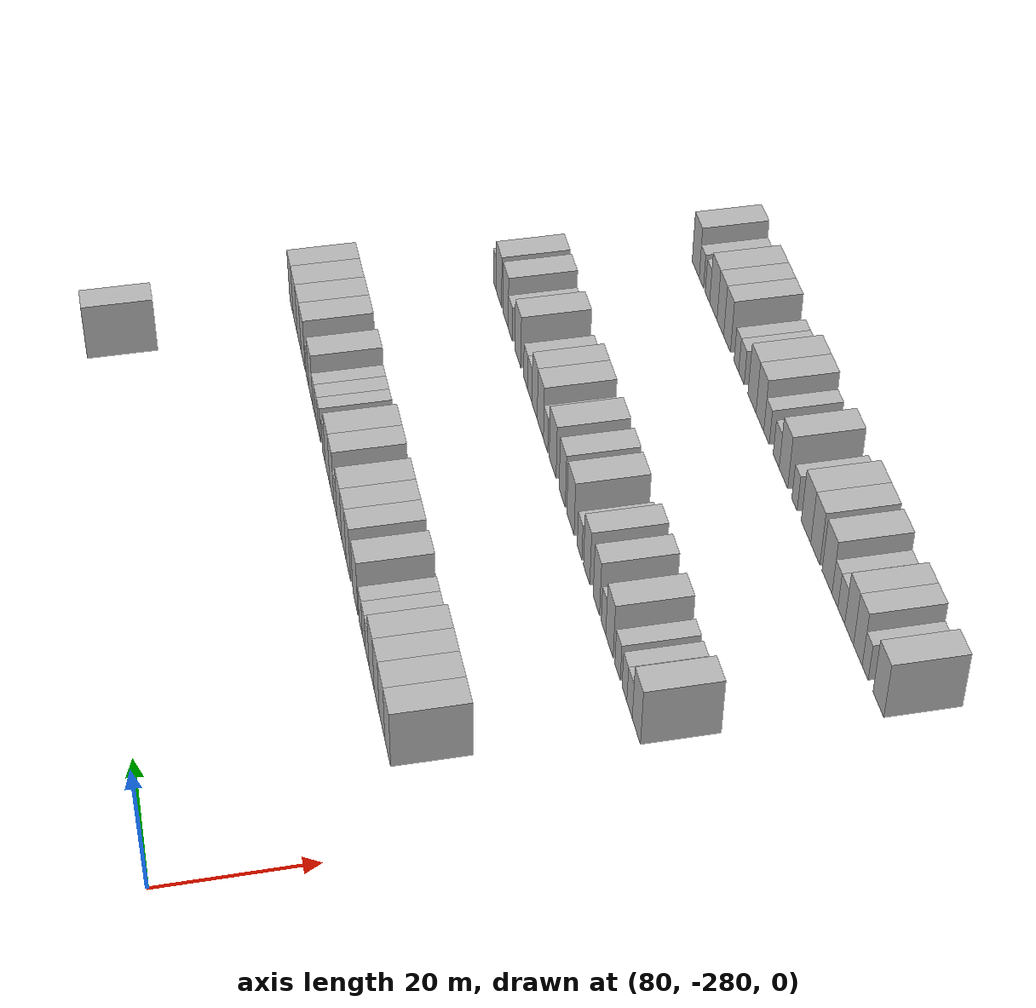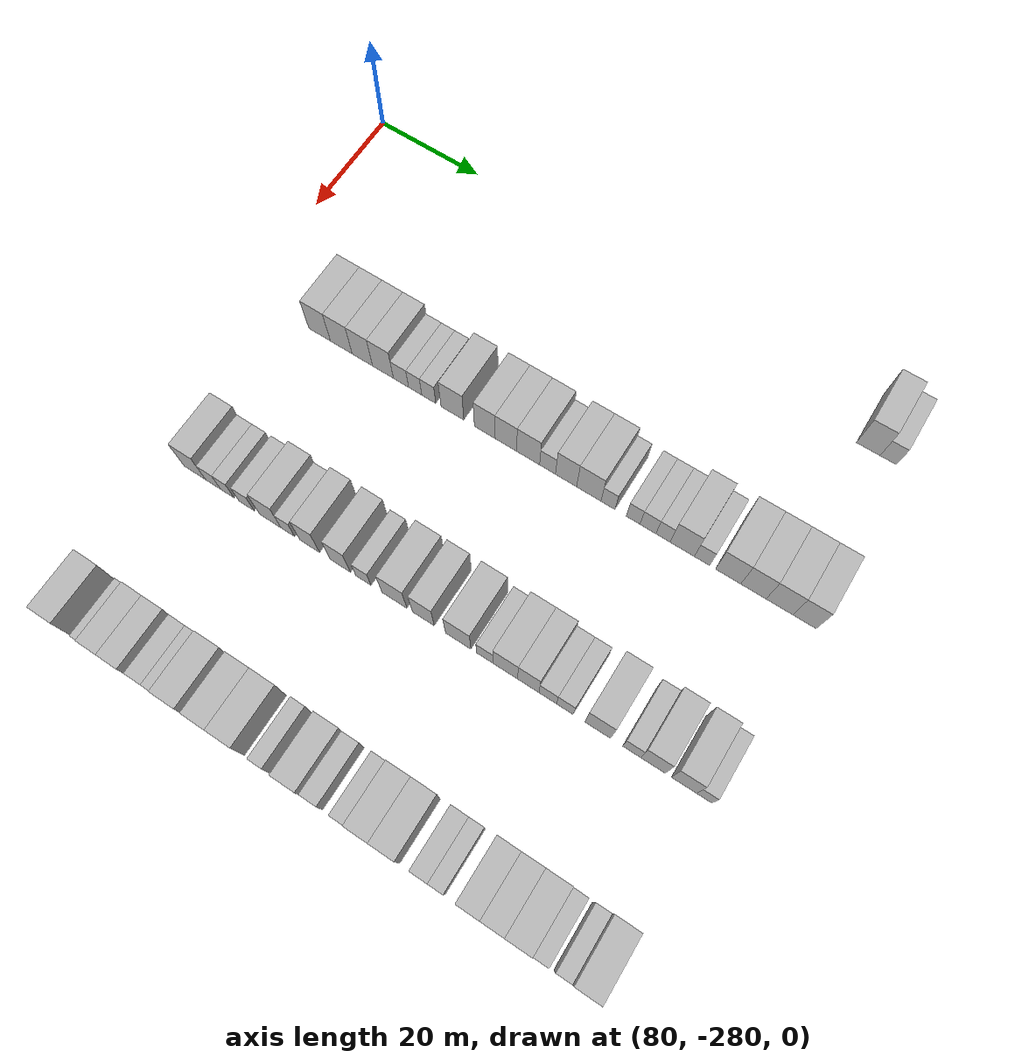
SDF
<sdf version="1.6">
 <world name="default">
  <model name="building_532">
   <static>1</static>
   <pose>85.0000 -180.4842 0 0.000000 0.000000 0.000000</pose>
   <link name="link">
    <pose>0 0 4.50 0 0 0</pose>
    <collision name="collision"><geometry><box><size>10.0000 4.0856 9.0000</size></box></geometry></collision>
    <visual name="visual">
     <cast_shadows>0</cast_shadows>
     <geometry><box><size>10.0000 4.0856 9.0000</size></box></geometry>
     <material>
      <script>
       <uri>model://HANNAS_wall/materials/scripts</uri>
       <uri>model://HANNAS_wall/materials/textures</uri>
       <name>vrc/HANNAS_wall</name>
      </script>
     </material>
    </visual>
   </link>
  </model>
  <model name="building_533">
   <static>1</static>
   <pose>85.0000 -177.0371 0 0.000000 0.000000 0.000000</pose>
   <link name="link">
    <pose>0 0 3.00 0 0 0</pose>
    <collision name="collision"><geometry><box><size>10.0000 2.8087 6.0000</size></box></geometry></collision>
    <visual name="visual">
     <cast_shadows>0</cast_shadows>
     <geometry><box><size>10.0000 2.8087 6.0000</size></box></geometry>
     <material>
      <script>
       <uri>model://HANNAS_wall/materials/scripts</uri>
       <uri>model://HANNAS_wall/materials/textures</uri>
       <name>vrc/HANNAS_wall</name>
      </script>
     </material>
    </visual>
   </link>
  </model>
  <model name="building_739">
   <static>1</static>
   <pose>115.0000 -264.7862 0 0.000000 0.000000 0.000000</pose>
   <link name="link">
    <pose>0 0 4.50 0 0 0</pose>
    <collision name="collision"><geometry><box><size>10.0000 4.3604 9.0000</size></box></geometry></collision>
    <visual name="visual">
     <cast_shadows>0</cast_shadows>
     <geometry><box><size>10.0000 4.3604 9.0000</size></box></geometry>
     <material>
      <script>
       <uri>model://HANNAS_wall/materials/scripts</uri>
       <uri>model://HANNAS_wall/materials/textures</uri>
       <name>vrc/HANNAS_wall</name>
      </script>
     </material>
    </visual>
   </link>
  </model>
  <model name="building_740">
   <static>1</static>
   <pose>115.0000 -260.4395 0 0.000000 0.000000 0.000000</pose>
   <link name="link">
    <pose>0 0 4.50 0 0 0</pose>
    <collision name="collision"><geometry><box><size>10.0000 4.3329 9.0000</size></box></geometry></collision>
    <visual name="visual">
     <cast_shadows>0</cast_shadows>
     <geometry><box><size>10.0000 4.3329 9.0000</size></box></geometry>
     <material>
      <script>
       <uri>model://HANNAS_wall/materials/scripts</uri>
       <uri>model://HANNAS_wall/materials/textures</uri>
       <name>vrc/HANNAS_wall</name>
      </script>
     </material>
    </visual>
   </link>
  </model>
  <model name="building_741">
   <static>1</static>
   <pose>115.0000 -256.2731 0 0.000000 0.000000 0.000000</pose>
   <link name="link">
    <pose>0 0 4.50 0 0 0</pose>
    <collision name="collision"><geometry><box><size>10.0000 3.9998 9.0000</size></box></geometry></collision>
    <visual name="visual">
     <cast_shadows>0</cast_shadows>
     <geometry><box><size>10.0000 3.9998 9.0000</size></box></geometry>
     <material>
      <script>
       <uri>model://HANNAS_wall/materials/scripts</uri>
       <uri>model://HANNAS_wall/materials/textures</uri>
       <name>vrc/HANNAS_wall</name>
      </script>
     </material>
    </visual>
   </link>
  </model>
  <model name="building_742">
   <static>1</static>
   <pose>115.0000 -252.2165 0 0.000000 0.000000 0.000000</pose>
   <link name="link">
    <pose>0 0 4.50 0 0 0</pose>
    <collision name="collision"><geometry><box><size>10.0000 4.1134 9.0000</size></box></geometry></collision>
    <visual name="visual">
     <cast_shadows>0</cast_shadows>
     <geometry><box><size>10.0000 4.1134 9.0000</size></box></geometry>
     <material>
      <script>
       <uri>model://HANNAS_wall/materials/scripts</uri>
       <uri>model://HANNAS_wall/materials/textures</uri>
       <name>vrc/HANNAS_wall</name>
      </script>
     </material>
    </visual>
   </link>
  </model>
  <model name="building_743">
   <static>1</static>
   <pose>115.0000 -248.6884 0 0.000000 0.000000 0.000000</pose>
   <link name="link">
    <pose>0 0 3.00 0 0 0</pose>
    <collision name="collision"><geometry><box><size>10.0000 2.9428 6.0000</size></box></geometry></collision>
    <visual name="visual">
     <cast_shadows>0</cast_shadows>
     <geometry><box><size>10.0000 2.9428 6.0000</size></box></geometry>
     <material>
      <script>
       <uri>model://HANNAS_wall/materials/scripts</uri>
       <uri>model://HANNAS_wall/materials/textures</uri>
       <name>vrc/HANNAS_wall</name>
      </script>
     </material>
    </visual>
   </link>
  </model>
  <model name="building_744">
   <static>1</static>
   <pose>115.0000 -245.9374 0 0.000000 0.000000 0.000000</pose>
   <link name="link">
    <pose>0 0 3.00 0 0 0</pose>
    <collision name="collision"><geometry><box><size>10.0000 2.5593 6.0000</size></box></geometry></collision>
    <visual name="visual">
     <cast_shadows>0</cast_shadows>
     <geometry><box><size>10.0000 2.5593 6.0000</size></box></geometry>
     <material>
      <script>
       <uri>model://HANNAS_wall/materials/scripts</uri>
       <uri>model://HANNAS_wall/materials/textures</uri>
       <name>vrc/HANNAS_wall</name>
      </script>
     </material>
    </visual>
   </link>
  </model>
  <model name="building_745">
   <static>1</static>
   <pose>115.0000 -243.3194 0 0.000000 0.000000 0.000000</pose>
   <link name="link">
    <pose>0 0 3.00 0 0 0</pose>
    <collision name="collision"><geometry><box><size>10.0000 2.6768 6.0000</size></box></geometry></collision>
    <visual name="visual">
     <cast_shadows>0</cast_shadows>
     <geometry><box><size>10.0000 2.6768 6.0000</size></box></geometry>
     <material>
      <script>
       <uri>model://HANNAS_wall/materials/scripts</uri>
       <uri>model://HANNAS_wall/materials/textures</uri>
       <name>vrc/HANNAS_wall</name>
      </script>
     </material>
    </visual>
   </link>
  </model>
  <model name="building_746">
   <static>1</static>
   <pose>115.0000 -238.8083 0 0.000000 0.000000 0.000000</pose>
   <link name="link">
    <pose>0 0 4.50 0 0 0</pose>
    <collision name="collision"><geometry><box><size>10.0000 4.3453 9.0000</size></box></geometry></collision>
    <visual name="visual">
     <cast_shadows>0</cast_shadows>
     <geometry><box><size>10.0000 4.3453 9.0000</size></box></geometry>
     <material>
      <script>
       <uri>model://HANNAS_wall/materials/scripts</uri>
       <uri>model://HANNAS_wall/materials/textures</uri>
       <name>vrc/HANNAS_wall</name>
      </script>
     </material>
    </visual>
   </link>
  </model>
  <model name="building_747">
   <static>1</static>
   <pose>115.0000 -232.6866 0 0.000000 0.000000 0.000000</pose>
   <link name="link">
    <pose>0 0 4.50 0 0 0</pose>
    <collision name="collision"><geometry><box><size>10.0000 3.8981 9.0000</size></box></geometry></collision>
    <visual name="visual">
     <cast_shadows>0</cast_shadows>
     <geometry><box><size>10.0000 3.8981 9.0000</size></box></geometry>
     <material>
      <script>
       <uri>model://HANNAS_wall/materials/scripts</uri>
       <uri>model://HANNAS_wall/materials/textures</uri>
       <name>vrc/HANNAS_wall</name>
      </script>
     </material>
    </visual>
   </link>
  </model>
  <model name="building_748">
   <static>1</static>
   <pose>115.0000 -228.7459 0 0.000000 0.000000 0.000000</pose>
   <link name="link">
    <pose>0 0 4.50 0 0 0</pose>
    <collision name="collision"><geometry><box><size>10.0000 3.9834 9.0000</size></box></geometry></collision>
    <visual name="visual">
     <cast_shadows>0</cast_shadows>
     <geometry><box><size>10.0000 3.9834 9.0000</size></box></geometry>
     <material>
      <script>
       <uri>model://HANNAS_wall/materials/scripts</uri>
       <uri>model://HANNAS_wall/materials/textures</uri>
       <name>vrc/HANNAS_wall</name>
      </script>
     </material>
    </visual>
   </link>
  </model>
  <model name="building_749">
   <static>1</static>
   <pose>115.0000 -224.6302 0 0.000000 0.000000 0.000000</pose>
   <link name="link">
    <pose>0 0 4.50 0 0 0</pose>
    <collision name="collision"><geometry><box><size>10.0000 4.2481 9.0000</size></box></geometry></collision>
    <visual name="visual">
     <cast_shadows>0</cast_shadows>
     <geometry><box><size>10.0000 4.2481 9.0000</size></box></geometry>
     <material>
      <script>
       <uri>model://HANNAS_wall/materials/scripts</uri>
       <uri>model://HANNAS_wall/materials/textures</uri>
       <name>vrc/HANNAS_wall</name>
      </script>
     </material>
    </visual>
   </link>
  </model>
  <model name="building_750">
   <static>1</static>
   <pose>115.0000 -221.0613 0 0.000000 0.000000 0.000000</pose>
   <link name="link">
    <pose>0 0 3.00 0 0 0</pose>
    <collision name="collision"><geometry><box><size>10.0000 2.8897 6.0000</size></box></geometry></collision>
    <visual name="visual">
     <cast_shadows>0</cast_shadows>
     <geometry><box><size>10.0000 2.8897 6.0000</size></box></geometry>
     <material>
      <script>
       <uri>model://HANNAS_wall/materials/scripts</uri>
       <uri>model://HANNAS_wall/materials/textures</uri>
       <name>vrc/HANNAS_wall</name>
      </script>
     </material>
    </visual>
   </link>
  </model>
  <model name="building_751">
   <static>1</static>
   <pose>115.0000 -217.6936 0 0.000000 0.000000 0.000000</pose>
   <link name="link">
    <pose>0 0 4.50 0 0 0</pose>
    <collision name="collision"><geometry><box><size>10.0000 3.8456 9.0000</size></box></geometry></collision>
    <visual name="visual">
     <cast_shadows>0</cast_shadows>
     <geometry><box><size>10.0000 3.8456 9.0000</size></box></geometry>
     <material>
      <script>
       <uri>model://HANNAS_wall/materials/scripts</uri>
       <uri>model://HANNAS_wall/materials/textures</uri>
       <name>vrc/HANNAS_wall</name>
      </script>
     </material>
    </visual>
   </link>
  </model>
  <model name="building_752">
   <static>1</static>
   <pose>115.0000 -213.5782 0 0.000000 0.000000 0.000000</pose>
   <link name="link">
    <pose>0 0 4.50 0 0 0</pose>
    <collision name="collision"><geometry><box><size>10.0000 4.3852 9.0000</size></box></geometry></collision>
    <visual name="visual">
     <cast_shadows>0</cast_shadows>
     <geometry><box><size>10.0000 4.3852 9.0000</size></box></geometry>
     <material>
      <script>
       <uri>model://HANNAS_wall/materials/scripts</uri>
       <uri>model://HANNAS_wall/materials/textures</uri>
       <name>vrc/HANNAS_wall</name>
      </script>
     </material>
    </visual>
   </link>
  </model>
  <model name="building_753">
   <static>1</static>
   <pose>115.0000 -210.1295 0 0.000000 0.000000 0.000000</pose>
   <link name="link">
    <pose>0 0 3.00 0 0 0</pose>
    <collision name="collision"><geometry><box><size>10.0000 2.5121 6.0000</size></box></geometry></collision>
    <visual name="visual">
     <cast_shadows>0</cast_shadows>
     <geometry><box><size>10.0000 2.5121 6.0000</size></box></geometry>
     <material>
      <script>
       <uri>model://HANNAS_wall/materials/scripts</uri>
       <uri>model://HANNAS_wall/materials/textures</uri>
       <name>vrc/HANNAS_wall</name>
      </script>
     </material>
    </visual>
   </link>
  </model>
  <model name="building_754">
   <static>1</static>
   <pose>115.0000 -205.6609 0 0.000000 0.000000 0.000000</pose>
   <link name="link">
    <pose>0 0 3.00 0 0 0</pose>
    <collision name="collision"><geometry><box><size>10.0000 2.4251 6.0000</size></box></geometry></collision>
    <visual name="visual">
     <cast_shadows>0</cast_shadows>
     <geometry><box><size>10.0000 2.4251 6.0000</size></box></geometry>
     <material>
      <script>
       <uri>model://HANNAS_wall/materials/scripts</uri>
       <uri>model://HANNAS_wall/materials/textures</uri>
       <name>vrc/HANNAS_wall</name>
      </script>
     </material>
    </visual>
   </link>
  </model>
  <model name="building_755">
   <static>1</static>
   <pose>115.0000 -203.0400 0 0.000000 0.000000 0.000000</pose>
   <link name="link">
    <pose>0 0 3.00 0 0 0</pose>
    <collision name="collision"><geometry><box><size>10.0000 2.8167 6.0000</size></box></geometry></collision>
    <visual name="visual">
     <cast_shadows>0</cast_shadows>
     <geometry><box><size>10.0000 2.8167 6.0000</size></box></geometry>
     <material>
      <script>
       <uri>model://HANNAS_wall/materials/scripts</uri>
       <uri>model://HANNAS_wall/materials/textures</uri>
       <name>vrc/HANNAS_wall</name>
      </script>
     </material>
    </visual>
   </link>
  </model>
  <model name="building_756">
   <static>1</static>
   <pose>115.0000 -200.3820 0 0.000000 0.000000 0.000000</pose>
   <link name="link">
    <pose>0 0 3.00 0 0 0</pose>
    <collision name="collision"><geometry><box><size>10.0000 2.4995 6.0000</size></box></geometry></collision>
    <visual name="visual">
     <cast_shadows>0</cast_shadows>
     <geometry><box><size>10.0000 2.4995 6.0000</size></box></geometry>
     <material>
      <script>
       <uri>model://HANNAS_wall/materials/scripts</uri>
       <uri>model://HANNAS_wall/materials/textures</uri>
       <name>vrc/HANNAS_wall</name>
      </script>
     </material>
    </visual>
   </link>
  </model>
  <model name="building_757">
   <static>1</static>
   <pose>115.0000 -197.0403 0 0.000000 0.000000 0.000000</pose>
   <link name="link">
    <pose>0 0 4.50 0 0 0</pose>
    <collision name="collision"><geometry><box><size>10.0000 4.1839 9.0000</size></box></geometry></collision>
    <visual name="visual">
     <cast_shadows>0</cast_shadows>
     <geometry><box><size>10.0000 4.1839 9.0000</size></box></geometry>
     <material>
      <script>
       <uri>model://HANNAS_wall/materials/scripts</uri>
       <uri>model://HANNAS_wall/materials/textures</uri>
       <name>vrc/HANNAS_wall</name>
      </script>
     </material>
    </visual>
   </link>
  </model>
  <model name="building_758">
   <static>1</static>
   <pose>115.0000 -193.6338 0 0.000000 0.000000 0.000000</pose>
   <link name="link">
    <pose>0 0 3.00 0 0 0</pose>
    <collision name="collision"><geometry><box><size>10.0000 2.6292 6.0000</size></box></geometry></collision>
    <visual name="visual">
     <cast_shadows>0</cast_shadows>
     <geometry><box><size>10.0000 2.6292 6.0000</size></box></geometry>
     <material>
      <script>
       <uri>model://HANNAS_wall/materials/scripts</uri>
       <uri>model://HANNAS_wall/materials/textures</uri>
       <name>vrc/HANNAS_wall</name>
      </script>
     </material>
    </visual>
   </link>
  </model>
  <model name="building_759">
   <static>1</static>
   <pose>115.0000 -189.1664 0 0.000000 0.000000 0.000000</pose>
   <link name="link">
    <pose>0 0 4.50 0 0 0</pose>
    <collision name="collision"><geometry><box><size>10.0000 4.3056 9.0000</size></box></geometry></collision>
    <visual name="visual">
     <cast_shadows>0</cast_shadows>
     <geometry><box><size>10.0000 4.3056 9.0000</size></box></geometry>
     <material>
      <script>
       <uri>model://HANNAS_wall/materials/scripts</uri>
       <uri>model://HANNAS_wall/materials/textures</uri>
       <name>vrc/HANNAS_wall</name>
      </script>
     </material>
    </visual>
   </link>
  </model>
  <model name="building_760">
   <static>1</static>
   <pose>115.0000 -184.8801 0 0.000000 0.000000 0.000000</pose>
   <link name="link">
    <pose>0 0 4.50 0 0 0</pose>
    <collision name="collision"><geometry><box><size>10.0000 4.2669 9.0000</size></box></geometry></collision>
    <visual name="visual">
     <cast_shadows>0</cast_shadows>
     <geometry><box><size>10.0000 4.2669 9.0000</size></box></geometry>
     <material>
      <script>
       <uri>model://HANNAS_wall/materials/scripts</uri>
       <uri>model://HANNAS_wall/materials/textures</uri>
       <name>vrc/HANNAS_wall</name>
      </script>
     </material>
    </visual>
   </link>
  </model>
  <model name="building_761">
   <static>1</static>
   <pose>115.0000 -180.5116 0 0.000000 0.000000 0.000000</pose>
   <link name="link">
    <pose>0 0 4.50 0 0 0</pose>
    <collision name="collision"><geometry><box><size>10.0000 4.4702 9.0000</size></box></geometry></collision>
    <visual name="visual">
     <cast_shadows>0</cast_shadows>
     <geometry><box><size>10.0000 4.4702 9.0000</size></box></geometry>
     <material>
      <script>
       <uri>model://HANNAS_wall/materials/scripts</uri>
       <uri>model://HANNAS_wall/materials/textures</uri>
       <name>vrc/HANNAS_wall</name>
      </script>
     </material>
    </visual>
   </link>
  </model>
  <model name="building_762">
   <static>1</static>
   <pose>115.0000 -176.3366 0 0.000000 0.000000 0.000000</pose>
   <link name="link">
    <pose>0 0 4.50 0 0 0</pose>
    <collision name="collision"><geometry><box><size>10.0000 3.8798 9.0000</size></box></geometry></collision>
    <visual name="visual">
     <cast_shadows>0</cast_shadows>
     <geometry><box><size>10.0000 3.8798 9.0000</size></box></geometry>
     <material>
      <script>
       <uri>model://HANNAS_wall/materials/scripts</uri>
       <uri>model://HANNAS_wall/materials/textures</uri>
       <name>vrc/HANNAS_wall</name>
      </script>
     </material>
    </visual>
   </link>
  </model>
  <model name="building_974">
   <static>1</static>
   <pose>145.0000 -266.9165 0 0.000000 0.000000 0.000000</pose>
   <link name="link">
    <pose>0 0 4.50 0 0 0</pose>
    <collision name="collision"><geometry><box><size>10.0000 4.2756 9.0000</size></box></geometry></collision>
    <visual name="visual">
     <cast_shadows>0</cast_shadows>
     <geometry><box><size>10.0000 4.2756 9.0000</size></box></geometry>
     <material>
      <script>
       <uri>model://HANNAS_wall/materials/scripts</uri>
       <uri>model://HANNAS_wall/materials/textures</uri>
       <name>vrc/HANNAS_wall</name>
      </script>
     </material>
    </visual>
   </link>
  </model>
  <model name="building_975">
   <static>1</static>
   <pose>145.0000 -263.3253 0 0.000000 0.000000 0.000000</pose>
   <link name="link">
    <pose>0 0 3.00 0 0 0</pose>
    <collision name="collision"><geometry><box><size>10.0000 2.9068 6.0000</size></box></geometry></collision>
    <visual name="visual">
     <cast_shadows>0</cast_shadows>
     <geometry><box><size>10.0000 2.9068 6.0000</size></box></geometry>
     <material>
      <script>
       <uri>model://HANNAS_wall/materials/scripts</uri>
       <uri>model://HANNAS_wall/materials/textures</uri>
       <name>vrc/HANNAS_wall</name>
      </script>
     </material>
    </visual>
   </link>
  </model>
  <model name="building_976">
   <static>1</static>
   <pose>145.0000 -260.5721 0 0.000000 0.000000 0.000000</pose>
   <link name="link">
    <pose>0 0 3.00 0 0 0</pose>
    <collision name="collision"><geometry><box><size>10.0000 2.5996 6.0000</size></box></geometry></collision>
    <visual name="visual">
     <cast_shadows>0</cast_shadows>
     <geometry><box><size>10.0000 2.5996 6.0000</size></box></geometry>
     <material>
      <script>
       <uri>model://HANNAS_wall/materials/scripts</uri>
       <uri>model://HANNAS_wall/materials/textures</uri>
       <name>vrc/HANNAS_wall</name>
      </script>
     </material>
    </visual>
   </link>
  </model>
  <model name="building_977">
   <static>1</static>
   <pose>145.0000 -256.8206 0 0.000000 0.000000 0.000000</pose>
   <link name="link">
    <pose>0 0 3.00 0 0 0</pose>
    <collision name="collision"><geometry><box><size>10.0000 2.9035 6.0000</size></box></geometry></collision>
    <visual name="visual">
     <cast_shadows>0</cast_shadows>
     <geometry><box><size>10.0000 2.9035 6.0000</size></box></geometry>
     <material>
      <script>
       <uri>model://HANNAS_wall/materials/scripts</uri>
       <uri>model://HANNAS_wall/materials/textures</uri>
       <name>vrc/HANNAS_wall</name>
      </script>
     </material>
    </visual>
   </link>
  </model>
  <model name="building_978">
   <static>1</static>
   <pose>145.0000 -252.3105 0 0.000000 0.000000 0.000000</pose>
   <link name="link">
    <pose>0 0 4.50 0 0 0</pose>
    <collision name="collision"><geometry><box><size>10.0000 4.1167 9.0000</size></box></geometry></collision>
    <visual name="visual">
     <cast_shadows>0</cast_shadows>
     <geometry><box><size>10.0000 4.1167 9.0000</size></box></geometry>
     <material>
      <script>
       <uri>model://HANNAS_wall/materials/scripts</uri>
       <uri>model://HANNAS_wall/materials/textures</uri>
       <name>vrc/HANNAS_wall</name>
      </script>
     </material>
    </visual>
   </link>
  </model>
  <model name="building_979">
   <static>1</static>
   <pose>145.0000 -248.9707 0 0.000000 0.000000 0.000000</pose>
   <link name="link">
    <pose>0 0 3.00 0 0 0</pose>
    <collision name="collision"><geometry><box><size>10.0000 2.5631 6.0000</size></box></geometry></collision>
    <visual name="visual">
     <cast_shadows>0</cast_shadows>
     <geometry><box><size>10.0000 2.5631 6.0000</size></box></geometry>
     <material>
      <script>
       <uri>model://HANNAS_wall/materials/scripts</uri>
       <uri>model://HANNAS_wall/materials/textures</uri>
       <name>vrc/HANNAS_wall</name>
      </script>
     </material>
    </visual>
   </link>
  </model>
  <model name="building_980">
   <static>1</static>
   <pose>145.0000 -244.8554 0 0.000000 0.000000 0.000000</pose>
   <link name="link">
    <pose>0 0 4.50 0 0 0</pose>
    <collision name="collision"><geometry><box><size>10.0000 3.6674 9.0000</size></box></geometry></collision>
    <visual name="visual">
     <cast_shadows>0</cast_shadows>
     <geometry><box><size>10.0000 3.6674 9.0000</size></box></geometry>
     <material>
      <script>
       <uri>model://HANNAS_wall/materials/scripts</uri>
       <uri>model://HANNAS_wall/materials/textures</uri>
       <name>vrc/HANNAS_wall</name>
      </script>
     </material>
    </visual>
   </link>
  </model>
  <model name="building_981">
   <static>1</static>
   <pose>145.0000 -239.1582 0 0.000000 0.000000 0.000000</pose>
   <link name="link">
    <pose>0 0 4.50 0 0 0</pose>
    <collision name="collision"><geometry><box><size>10.0000 3.7271 9.0000</size></box></geometry></collision>
    <visual name="visual">
     <cast_shadows>0</cast_shadows>
     <geometry><box><size>10.0000 3.7271 9.0000</size></box></geometry>
     <material>
      <script>
       <uri>model://HANNAS_wall/materials/scripts</uri>
       <uri>model://HANNAS_wall/materials/textures</uri>
       <name>vrc/HANNAS_wall</name>
      </script>
     </material>
    </visual>
   </link>
  </model>
  <model name="building_982">
   <static>1</static>
   <pose>145.0000 -234.9110 0 0.000000 0.000000 0.000000</pose>
   <link name="link">
    <pose>0 0 3.00 0 0 0</pose>
    <collision name="collision"><geometry><box><size>10.0000 2.7673 6.0000</size></box></geometry></collision>
    <visual name="visual">
     <cast_shadows>0</cast_shadows>
     <geometry><box><size>10.0000 2.7673 6.0000</size></box></geometry>
     <material>
      <script>
       <uri>model://HANNAS_wall/materials/scripts</uri>
       <uri>model://HANNAS_wall/materials/textures</uri>
       <name>vrc/HANNAS_wall</name>
      </script>
     </material>
    </visual>
   </link>
  </model>
  <model name="building_983">
   <static>1</static>
   <pose>145.0000 -229.2821 0 0.000000 0.000000 0.000000</pose>
   <link name="link">
    <pose>0 0 4.50 0 0 0</pose>
    <collision name="collision"><geometry><box><size>10.0000 4.4905 9.0000</size></box></geometry></collision>
    <visual name="visual">
     <cast_shadows>0</cast_shadows>
     <geometry><box><size>10.0000 4.4905 9.0000</size></box></geometry>
     <material>
      <script>
       <uri>model://HANNAS_wall/materials/scripts</uri>
       <uri>model://HANNAS_wall/materials/textures</uri>
       <name>vrc/HANNAS_wall</name>
      </script>
     </material>
    </visual>
   </link>
  </model>
  <model name="building_984">
   <static>1</static>
   <pose>145.0000 -224.0858 0 0.000000 0.000000 0.000000</pose>
   <link name="link">
    <pose>0 0 4.50 0 0 0</pose>
    <collision name="collision"><geometry><box><size>10.0000 3.9019 9.0000</size></box></geometry></collision>
    <visual name="visual">
     <cast_shadows>0</cast_shadows>
     <geometry><box><size>10.0000 3.9019 9.0000</size></box></geometry>
     <material>
      <script>
       <uri>model://HANNAS_wall/materials/scripts</uri>
       <uri>model://HANNAS_wall/materials/textures</uri>
       <name>vrc/HANNAS_wall</name>
      </script>
     </material>
    </visual>
   </link>
  </model>
  <model name="building_985">
   <static>1</static>
   <pose>145.0000 -217.9032 0 0.000000 0.000000 0.000000</pose>
   <link name="link">
    <pose>0 0 4.50 0 0 0</pose>
    <collision name="collision"><geometry><box><size>10.0000 4.4633 9.0000</size></box></geometry></collision>
    <visual name="visual">
     <cast_shadows>0</cast_shadows>
     <geometry><box><size>10.0000 4.4633 9.0000</size></box></geometry>
     <material>
      <script>
       <uri>model://HANNAS_wall/materials/scripts</uri>
       <uri>model://HANNAS_wall/materials/textures</uri>
       <name>vrc/HANNAS_wall</name>
      </script>
     </material>
    </visual>
   </link>
  </model>
  <model name="building_986">
   <static>1</static>
   <pose>145.0000 -213.2489 0 0.000000 0.000000 0.000000</pose>
   <link name="link">
    <pose>0 0 3.00 0 0 0</pose>
    <collision name="collision"><geometry><box><size>10.0000 2.8453 6.0000</size></box></geometry></collision>
    <visual name="visual">
     <cast_shadows>0</cast_shadows>
     <geometry><box><size>10.0000 2.8453 6.0000</size></box></geometry>
     <material>
      <script>
       <uri>model://HANNAS_wall/materials/scripts</uri>
       <uri>model://HANNAS_wall/materials/textures</uri>
       <name>vrc/HANNAS_wall</name>
      </script>
     </material>
    </visual>
   </link>
  </model>
  <model name="building_987">
   <static>1</static>
   <pose>145.0000 -209.7151 0 0.000000 0.000000 0.000000</pose>
   <link name="link">
    <pose>0 0 4.50 0 0 0</pose>
    <collision name="collision"><geometry><box><size>10.0000 4.2221 9.0000</size></box></geometry></collision>
    <visual name="visual">
     <cast_shadows>0</cast_shadows>
     <geometry><box><size>10.0000 4.2221 9.0000</size></box></geometry>
     <material>
      <script>
       <uri>model://HANNAS_wall/materials/scripts</uri>
       <uri>model://HANNAS_wall/materials/textures</uri>
       <name>vrc/HANNAS_wall</name>
      </script>
     </material>
    </visual>
   </link>
  </model>
  <model name="building_988">
   <static>1</static>
   <pose>145.0000 -205.7803 0 0.000000 0.000000 0.000000</pose>
   <link name="link">
    <pose>0 0 4.50 0 0 0</pose>
    <collision name="collision"><geometry><box><size>10.0000 3.6476 9.0000</size></box></geometry></collision>
    <visual name="visual">
     <cast_shadows>0</cast_shadows>
     <geometry><box><size>10.0000 3.6476 9.0000</size></box></geometry>
     <material>
      <script>
       <uri>model://HANNAS_wall/materials/scripts</uri>
       <uri>model://HANNAS_wall/materials/textures</uri>
       <name>vrc/HANNAS_wall</name>
      </script>
     </material>
    </visual>
   </link>
  </model>
  <model name="building_989">
   <static>1</static>
   <pose>145.0000 -202.4633 0 0.000000 0.000000 0.000000</pose>
   <link name="link">
    <pose>0 0 3.00 0 0 0</pose>
    <collision name="collision"><geometry><box><size>10.0000 2.9865 6.0000</size></box></geometry></collision>
    <visual name="visual">
     <cast_shadows>0</cast_shadows>
     <geometry><box><size>10.0000 2.9865 6.0000</size></box></geometry>
     <material>
      <script>
       <uri>model://HANNAS_wall/materials/scripts</uri>
       <uri>model://HANNAS_wall/materials/textures</uri>
       <name>vrc/HANNAS_wall</name>
      </script>
     </material>
    </visual>
   </link>
  </model>
  <model name="building_990">
   <static>1</static>
   <pose>145.0000 -199.5627 0 0.000000 0.000000 0.000000</pose>
   <link name="link">
    <pose>0 0 3.00 0 0 0</pose>
    <collision name="collision"><geometry><box><size>10.0000 2.8145 6.0000</size></box></geometry></collision>
    <visual name="visual">
     <cast_shadows>0</cast_shadows>
     <geometry><box><size>10.0000 2.8145 6.0000</size></box></geometry>
     <material>
      <script>
       <uri>model://HANNAS_wall/materials/scripts</uri>
       <uri>model://HANNAS_wall/materials/textures</uri>
       <name>vrc/HANNAS_wall</name>
      </script>
     </material>
    </visual>
   </link>
  </model>
  <model name="building_991">
   <static>1</static>
   <pose>145.0000 -194.0328 0 0.000000 0.000000 0.000000</pose>
   <link name="link">
    <pose>0 0 4.50 0 0 0</pose>
    <collision name="collision"><geometry><box><size>10.0000 4.2454 9.0000</size></box></geometry></collision>
    <visual name="visual">
     <cast_shadows>0</cast_shadows>
     <geometry><box><size>10.0000 4.2454 9.0000</size></box></geometry>
     <material>
      <script>
       <uri>model://HANNAS_wall/materials/scripts</uri>
       <uri>model://HANNAS_wall/materials/textures</uri>
       <name>vrc/HANNAS_wall</name>
      </script>
     </material>
    </visual>
   </link>
  </model>
  <model name="building_992">
   <static>1</static>
   <pose>145.0000 -188.4503 0 0.000000 0.000000 0.000000</pose>
   <link name="link">
    <pose>0 0 3.00 0 0 0</pose>
    <collision name="collision"><geometry><box><size>10.0000 2.9195 6.0000</size></box></geometry></collision>
    <visual name="visual">
     <cast_shadows>0</cast_shadows>
     <geometry><box><size>10.0000 2.9195 6.0000</size></box></geometry>
     <material>
      <script>
       <uri>model://HANNAS_wall/materials/scripts</uri>
       <uri>model://HANNAS_wall/materials/textures</uri>
       <name>vrc/HANNAS_wall</name>
      </script>
     </material>
    </visual>
   </link>
  </model>
  <model name="building_993">
   <static>1</static>
   <pose>145.0000 -184.9802 0 0.000000 0.000000 0.000000</pose>
   <link name="link">
    <pose>0 0 4.50 0 0 0</pose>
    <collision name="collision"><geometry><box><size>10.0000 4.0208 9.0000</size></box></geometry></collision>
    <visual name="visual">
     <cast_shadows>0</cast_shadows>
     <geometry><box><size>10.0000 4.0208 9.0000</size></box></geometry>
     <material>
      <script>
       <uri>model://HANNAS_wall/materials/scripts</uri>
       <uri>model://HANNAS_wall/materials/textures</uri>
       <name>vrc/HANNAS_wall</name>
      </script>
     </material>
    </visual>
   </link>
  </model>
  <model name="building_994">
   <static>1</static>
   <pose>145.0000 -179.9763 0 0.000000 0.000000 0.000000</pose>
   <link name="link">
    <pose>0 0 4.50 0 0 0</pose>
    <collision name="collision"><geometry><box><size>10.0000 3.9871 9.0000</size></box></geometry></collision>
    <visual name="visual">
     <cast_shadows>0</cast_shadows>
     <geometry><box><size>10.0000 3.9871 9.0000</size></box></geometry>
     <material>
      <script>
       <uri>model://HANNAS_wall/materials/scripts</uri>
       <uri>model://HANNAS_wall/materials/textures</uri>
       <name>vrc/HANNAS_wall</name>
      </script>
     </material>
    </visual>
   </link>
  </model>
  <model name="building_995">
   <static>1</static>
   <pose>145.0000 -176.7538 0 0.000000 0.000000 0.000000</pose>
   <link name="link">
    <pose>0 0 3.00 0 0 0</pose>
    <collision name="collision"><geometry><box><size>10.0000 2.4579 6.0000</size></box></geometry></collision>
    <visual name="visual">
     <cast_shadows>0</cast_shadows>
     <geometry><box><size>10.0000 2.4579 6.0000</size></box></geometry>
     <material>
      <script>
       <uri>model://HANNAS_wall/materials/scripts</uri>
       <uri>model://HANNAS_wall/materials/textures</uri>
       <name>vrc/HANNAS_wall</name>
      </script>
     </material>
    </visual>
   </link>
  </model>
  <model name="building_1184">
   <static>1</static>
   <pose>175.0000 -268.1086 0 0.000000 0.000000 0.000000</pose>
   <link name="link">
    <pose>0 0 4.50 0 0 0</pose>
    <collision name="collision"><geometry><box><size>10.0000 4.3547 9.0000</size></box></geometry></collision>
    <visual name="visual">
     <cast_shadows>0</cast_shadows>
     <geometry><box><size>10.0000 4.3547 9.0000</size></box></geometry>
     <material>
      <script>
       <uri>model://HANNAS_wall/materials/scripts</uri>
       <uri>model://HANNAS_wall/materials/textures</uri>
       <name>vrc/HANNAS_wall</name>
      </script>
     </material>
    </visual>
   </link>
  </model>
  <model name="building_1185">
   <static>1</static>
   <pose>175.0000 -262.6917 0 0.000000 0.000000 0.000000</pose>
   <link name="link">
    <pose>0 0 3.00 0 0 0</pose>
    <collision name="collision"><geometry><box><size>10.0000 2.4791 6.0000</size></box></geometry></collision>
    <visual name="visual">
     <cast_shadows>0</cast_shadows>
     <geometry><box><size>10.0000 2.4791 6.0000</size></box></geometry>
     <material>
      <script>
       <uri>model://HANNAS_wall/materials/scripts</uri>
       <uri>model://HANNAS_wall/materials/textures</uri>
       <name>vrc/HANNAS_wall</name>
      </script>
     </material>
    </visual>
   </link>
  </model>
  <model name="building_1186">
   <static>1</static>
   <pose>175.0000 -259.6203 0 0.000000 0.000000 0.000000</pose>
   <link name="link">
    <pose>0 0 4.50 0 0 0</pose>
    <collision name="collision"><geometry><box><size>10.0000 3.6638 9.0000</size></box></geometry></collision>
    <visual name="visual">
     <cast_shadows>0</cast_shadows>
     <geometry><box><size>10.0000 3.6638 9.0000</size></box></geometry>
     <material>
      <script>
       <uri>model://HANNAS_wall/materials/scripts</uri>
       <uri>model://HANNAS_wall/materials/textures</uri>
       <name>vrc/HANNAS_wall</name>
      </script>
     </material>
    </visual>
   </link>
  </model>
  <model name="building_1187">
   <static>1</static>
   <pose>175.0000 -255.9080 0 0.000000 0.000000 0.000000</pose>
   <link name="link">
    <pose>0 0 4.50 0 0 0</pose>
    <collision name="collision"><geometry><box><size>10.0000 3.7608 9.0000</size></box></geometry></collision>
    <visual name="visual">
     <cast_shadows>0</cast_shadows>
     <geometry><box><size>10.0000 3.7608 9.0000</size></box></geometry>
     <material>
      <script>
       <uri>model://HANNAS_wall/materials/scripts</uri>
       <uri>model://HANNAS_wall/materials/textures</uri>
       <name>vrc/HANNAS_wall</name>
      </script>
     </material>
    </visual>
   </link>
  </model>
  <model name="building_1188">
   <static>1</static>
   <pose>175.0000 -252.5336 0 0.000000 0.000000 0.000000</pose>
   <link name="link">
    <pose>0 0 3.00 0 0 0</pose>
    <collision name="collision"><geometry><box><size>10.0000 2.9880 6.0000</size></box></geometry></collision>
    <visual name="visual">
     <cast_shadows>0</cast_shadows>
     <geometry><box><size>10.0000 2.9880 6.0000</size></box></geometry>
     <material>
      <script>
       <uri>model://HANNAS_wall/materials/scripts</uri>
       <uri>model://HANNAS_wall/materials/textures</uri>
       <name>vrc/HANNAS_wall</name>
      </script>
     </material>
    </visual>
   </link>
  </model>
  <model name="building_1189">
   <static>1</static>
   <pose>175.0000 -249.7426 0 0.000000 0.000000 0.000000</pose>
   <link name="link">
    <pose>0 0 3.00 0 0 0</pose>
    <collision name="collision"><geometry><box><size>10.0000 2.5940 6.0000</size></box></geometry></collision>
    <visual name="visual">
     <cast_shadows>0</cast_shadows>
     <geometry><box><size>10.0000 2.5940 6.0000</size></box></geometry>
     <material>
      <script>
       <uri>model://HANNAS_wall/materials/scripts</uri>
       <uri>model://HANNAS_wall/materials/textures</uri>
       <name>vrc/HANNAS_wall</name>
      </script>
     </material>
    </visual>
   </link>
  </model>
  <model name="building_1190">
   <static>1</static>
   <pose>175.0000 -246.2281 0 0.000000 0.000000 0.000000</pose>
   <link name="link">
    <pose>0 0 4.50 0 0 0</pose>
    <collision name="collision"><geometry><box><size>10.0000 4.4348 9.0000</size></box></geometry></collision>
    <visual name="visual">
     <cast_shadows>0</cast_shadows>
     <geometry><box><size>10.0000 4.4348 9.0000</size></box></geometry>
     <material>
      <script>
       <uri>model://HANNAS_wall/materials/scripts</uri>
       <uri>model://HANNAS_wall/materials/textures</uri>
       <name>vrc/HANNAS_wall</name>
      </script>
     </material>
    </visual>
   </link>
  </model>
  <model name="building_1191">
   <static>1</static>
   <pose>175.0000 -240.9140 0 0.000000 0.000000 0.000000</pose>
   <link name="link">
    <pose>0 0 4.50 0 0 0</pose>
    <collision name="collision"><geometry><box><size>10.0000 4.1935 9.0000</size></box></geometry></collision>
    <visual name="visual">
     <cast_shadows>0</cast_shadows>
     <geometry><box><size>10.0000 4.1935 9.0000</size></box></geometry>
     <material>
      <script>
       <uri>model://HANNAS_wall/materials/scripts</uri>
       <uri>model://HANNAS_wall/materials/textures</uri>
       <name>vrc/HANNAS_wall</name>
      </script>
     </material>
    </visual>
   </link>
  </model>
  <model name="building_1192">
   <static>1</static>
   <pose>175.0000 -236.6101 0 0.000000 0.000000 0.000000</pose>
   <link name="link">
    <pose>0 0 4.50 0 0 0</pose>
    <collision name="collision"><geometry><box><size>10.0000 4.4142 9.0000</size></box></geometry></collision>
    <visual name="visual">
     <cast_shadows>0</cast_shadows>
     <geometry><box><size>10.0000 4.4142 9.0000</size></box></geometry>
     <material>
      <script>
       <uri>model://HANNAS_wall/materials/scripts</uri>
       <uri>model://HANNAS_wall/materials/textures</uri>
       <name>vrc/HANNAS_wall</name>
      </script>
     </material>
    </visual>
   </link>
  </model>
  <model name="building_1193">
   <static>1</static>
   <pose>175.0000 -231.1517 0 0.000000 0.000000 0.000000</pose>
   <link name="link">
    <pose>0 0 3.00 0 0 0</pose>
    <collision name="collision"><geometry><box><size>10.0000 2.5027 6.0000</size></box></geometry></collision>
    <visual name="visual">
     <cast_shadows>0</cast_shadows>
     <geometry><box><size>10.0000 2.5027 6.0000</size></box></geometry>
     <material>
      <script>
       <uri>model://HANNAS_wall/materials/scripts</uri>
       <uri>model://HANNAS_wall/materials/textures</uri>
       <name>vrc/HANNAS_wall</name>
      </script>
     </material>
    </visual>
   </link>
  </model>
  <model name="building_1194">
   <static>1</static>
   <pose>175.0000 -225.7956 0 0.000000 0.000000 0.000000</pose>
   <link name="link">
    <pose>0 0 4.50 0 0 0</pose>
    <collision name="collision"><geometry><box><size>10.0000 4.2095 9.0000</size></box></geometry></collision>
    <visual name="visual">
     <cast_shadows>0</cast_shadows>
     <geometry><box><size>10.0000 4.2095 9.0000</size></box></geometry>
     <material>
      <script>
       <uri>model://HANNAS_wall/materials/scripts</uri>
       <uri>model://HANNAS_wall/materials/textures</uri>
       <name>vrc/HANNAS_wall</name>
      </script>
     </material>
    </visual>
   </link>
  </model>
  <model name="building_1195">
   <static>1</static>
   <pose>175.0000 -222.2065 0 0.000000 0.000000 0.000000</pose>
   <link name="link">
    <pose>0 0 3.00 0 0 0</pose>
    <collision name="collision"><geometry><box><size>10.0000 2.9687 6.0000</size></box></geometry></collision>
    <visual name="visual">
     <cast_shadows>0</cast_shadows>
     <geometry><box><size>10.0000 2.9687 6.0000</size></box></geometry>
     <material>
      <script>
       <uri>model://HANNAS_wall/materials/scripts</uri>
       <uri>model://HANNAS_wall/materials/textures</uri>
       <name>vrc/HANNAS_wall</name>
      </script>
     </material>
    </visual>
   </link>
  </model>
  <model name="building_1196">
   <static>1</static>
   <pose>175.0000 -217.3350 0 0.000000 0.000000 0.000000</pose>
   <link name="link">
    <pose>0 0 3.00 0 0 0</pose>
    <collision name="collision"><geometry><box><size>10.0000 2.7744 6.0000</size></box></geometry></collision>
    <visual name="visual">
     <cast_shadows>0</cast_shadows>
     <geometry><box><size>10.0000 2.7744 6.0000</size></box></geometry>
     <material>
      <script>
       <uri>model://HANNAS_wall/materials/scripts</uri>
       <uri>model://HANNAS_wall/materials/textures</uri>
       <name>vrc/HANNAS_wall</name>
      </script>
     </material>
    </visual>
   </link>
  </model>
  <model name="building_1197">
   <static>1</static>
   <pose>175.0000 -213.9329 0 0.000000 0.000000 0.000000</pose>
   <link name="link">
    <pose>0 0 4.50 0 0 0</pose>
    <collision name="collision"><geometry><box><size>10.0000 4.0297 9.0000</size></box></geometry></collision>
    <visual name="visual">
     <cast_shadows>0</cast_shadows>
     <geometry><box><size>10.0000 4.0297 9.0000</size></box></geometry>
     <material>
      <script>
       <uri>model://HANNAS_wall/materials/scripts</uri>
       <uri>model://HANNAS_wall/materials/textures</uri>
       <name>vrc/HANNAS_wall</name>
      </script>
     </material>
    </visual>
   </link>
  </model>
  <model name="building_1198">
   <static>1</static>
   <pose>175.0000 -209.8056 0 0.000000 0.000000 0.000000</pose>
   <link name="link">
    <pose>0 0 4.50 0 0 0</pose>
    <collision name="collision"><geometry><box><size>10.0000 4.2248 9.0000</size></box></geometry></collision>
    <visual name="visual">
     <cast_shadows>0</cast_shadows>
     <geometry><box><size>10.0000 4.2248 9.0000</size></box></geometry>
     <material>
      <script>
       <uri>model://HANNAS_wall/materials/scripts</uri>
       <uri>model://HANNAS_wall/materials/textures</uri>
       <name>vrc/HANNAS_wall</name>
      </script>
     </material>
    </visual>
   </link>
  </model>
  <model name="building_1199">
   <static>1</static>
   <pose>175.0000 -204.2169 0 0.000000 0.000000 0.000000</pose>
   <link name="link">
    <pose>0 0 3.00 0 0 0</pose>
    <collision name="collision"><geometry><box><size>10.0000 2.9526 6.0000</size></box></geometry></collision>
    <visual name="visual">
     <cast_shadows>0</cast_shadows>
     <geometry><box><size>10.0000 2.9526 6.0000</size></box></geometry>
     <material>
      <script>
       <uri>model://HANNAS_wall/materials/scripts</uri>
       <uri>model://HANNAS_wall/materials/textures</uri>
       <name>vrc/HANNAS_wall</name>
      </script>
     </material>
    </visual>
   </link>
  </model>
  <model name="building_1200">
   <static>1</static>
   <pose>175.0000 -201.4923 0 0.000000 0.000000 0.000000</pose>
   <link name="link">
    <pose>0 0 3.00 0 0 0</pose>
    <collision name="collision"><geometry><box><size>10.0000 2.4965 6.0000</size></box></geometry></collision>
    <visual name="visual">
     <cast_shadows>0</cast_shadows>
     <geometry><box><size>10.0000 2.4965 6.0000</size></box></geometry>
     <material>
      <script>
       <uri>model://HANNAS_wall/materials/scripts</uri>
       <uri>model://HANNAS_wall/materials/textures</uri>
       <name>vrc/HANNAS_wall</name>
      </script>
     </material>
    </visual>
   </link>
  </model>
  <model name="building_1201">
   <static>1</static>
   <pose>175.0000 -196.3588 0 0.000000 0.000000 0.000000</pose>
   <link name="link">
    <pose>0 0 4.50 0 0 0</pose>
    <collision name="collision"><geometry><box><size>10.0000 3.7706 9.0000</size></box></geometry></collision>
    <visual name="visual">
     <cast_shadows>0</cast_shadows>
     <geometry><box><size>10.0000 3.7706 9.0000</size></box></geometry>
     <material>
      <script>
       <uri>model://HANNAS_wall/materials/scripts</uri>
       <uri>model://HANNAS_wall/materials/textures</uri>
       <name>vrc/HANNAS_wall</name>
      </script>
     </material>
    </visual>
   </link>
  </model>
  <model name="building_1202">
   <static>1</static>
   <pose>175.0000 -192.5963 0 0.000000 0.000000 0.000000</pose>
   <link name="link">
    <pose>0 0 4.50 0 0 0</pose>
    <collision name="collision"><geometry><box><size>10.0000 3.7544 9.0000</size></box></geometry></collision>
    <visual name="visual">
     <cast_shadows>0</cast_shadows>
     <geometry><box><size>10.0000 3.7544 9.0000</size></box></geometry>
     <material>
      <script>
       <uri>model://HANNAS_wall/materials/scripts</uri>
       <uri>model://HANNAS_wall/materials/textures</uri>
       <name>vrc/HANNAS_wall</name>
      </script>
     </material>
    </visual>
   </link>
  </model>
  <model name="building_1203">
   <static>1</static>
   <pose>175.0000 -188.6106 0 0.000000 0.000000 0.000000</pose>
   <link name="link">
    <pose>0 0 4.50 0 0 0</pose>
    <collision name="collision"><geometry><box><size>10.0000 4.2171 9.0000</size></box></geometry></collision>
    <visual name="visual">
     <cast_shadows>0</cast_shadows>
     <geometry><box><size>10.0000 4.2171 9.0000</size></box></geometry>
     <material>
      <script>
       <uri>model://HANNAS_wall/materials/scripts</uri>
       <uri>model://HANNAS_wall/materials/textures</uri>
       <name>vrc/HANNAS_wall</name>
      </script>
     </material>
    </visual>
   </link>
  </model>
  <model name="building_1204">
   <static>1</static>
   <pose>175.0000 -185.2168 0 0.000000 0.000000 0.000000</pose>
   <link name="link">
    <pose>0 0 3.00 0 0 0</pose>
    <collision name="collision"><geometry><box><size>10.0000 2.5704 6.0000</size></box></geometry></collision>
    <visual name="visual">
     <cast_shadows>0</cast_shadows>
     <geometry><box><size>10.0000 2.5704 6.0000</size></box></geometry>
     <material>
      <script>
       <uri>model://HANNAS_wall/materials/scripts</uri>
       <uri>model://HANNAS_wall/materials/textures</uri>
       <name>vrc/HANNAS_wall</name>
      </script>
     </material>
    </visual>
   </link>
  </model>
  <model name="building_1205">
   <static>1</static>
   <pose>175.0000 -181.6707 0 0.000000 0.000000 0.000000</pose>
   <link name="link">
    <pose>0 0 3.00 0 0 0</pose>
    <collision name="collision"><geometry><box><size>10.0000 2.5217 6.0000</size></box></geometry></collision>
    <visual name="visual">
     <cast_shadows>0</cast_shadows>
     <geometry><box><size>10.0000 2.5217 6.0000</size></box></geometry>
     <material>
      <script>
       <uri>model://HANNAS_wall/materials/scripts</uri>
       <uri>model://HANNAS_wall/materials/textures</uri>
       <name>vrc/HANNAS_wall</name>
      </script>
     </material>
    </visual>
   </link>
  </model>
  <model name="building_1206">
   <static>1</static>
   <pose>175.0000 -178.3200 0 0.000000 0.000000 0.000000</pose>
   <link name="link">
    <pose>0 0 4.50 0 0 0</pose>
    <collision name="collision"><geometry><box><size>10.0000 4.1798 9.0000</size></box></geometry></collision>
    <visual name="visual">
     <cast_shadows>0</cast_shadows>
     <geometry><box><size>10.0000 4.1798 9.0000</size></box></geometry>
     <material>
      <script>
       <uri>model://HANNAS_wall/materials/scripts</uri>
       <uri>model://HANNAS_wall/materials/textures</uri>
       <name>vrc/HANNAS_wall</name>
      </script>
     </material>
    </visual>
   </link>
  </model>
 </world>
</sdf>
